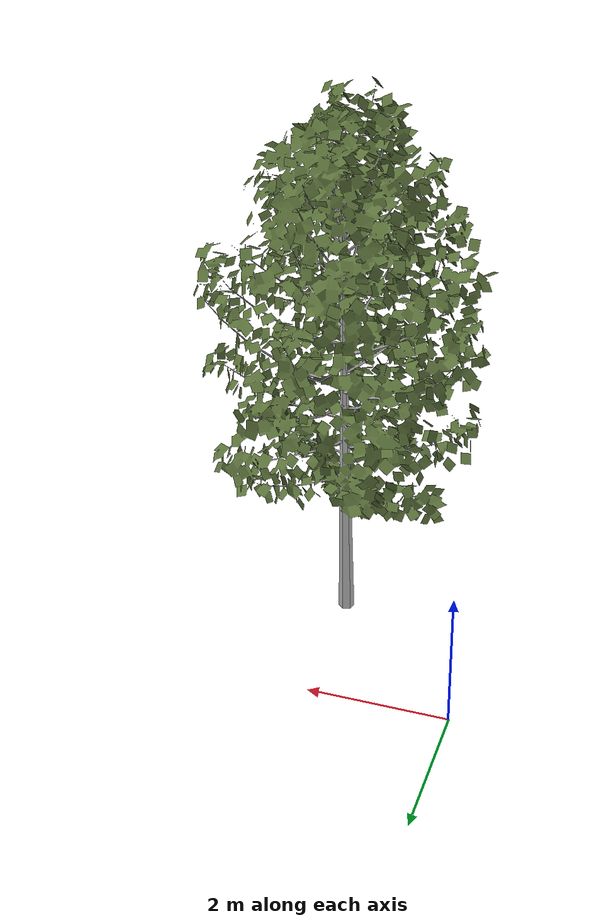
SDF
<?xml version="1.0" ?>
<sdf version="1.5">
  <model name="birch">
    <static>true</static>
    <link name="birch_link">
      <collision name="collision">
        <geometry>
          <mesh>
            <uri>model://birch/meshes/birch.stl</uri>
          </mesh>
        </geometry>
      </collision>
      <visual name="visual">
        <geometry>
          <mesh>
            <uri>model://birch/meshes/birch.dae</uri>
          </mesh>
        </geometry>
      </visual>
    </link>
  </model>
</sdf>
